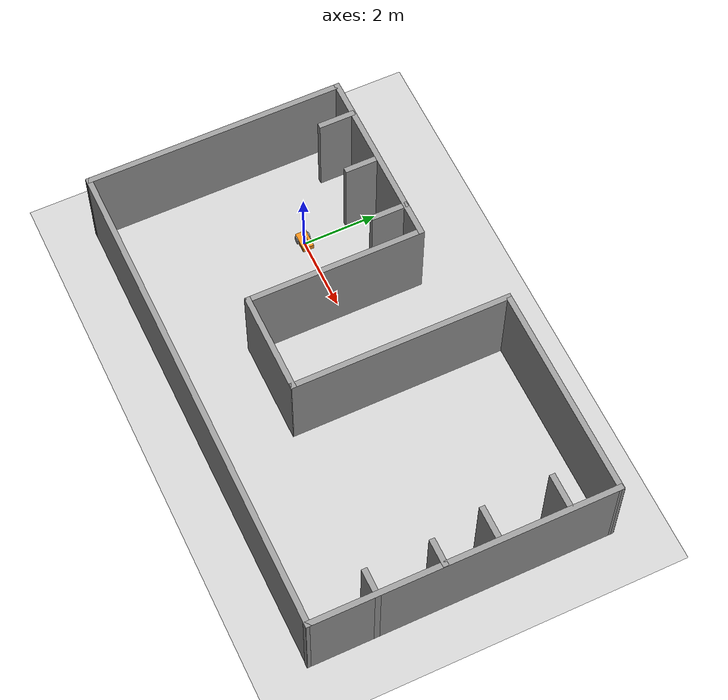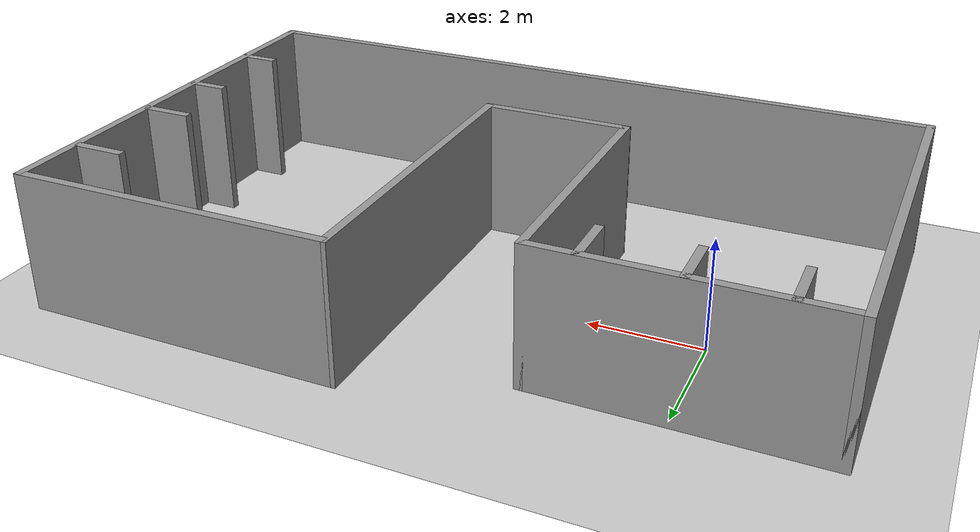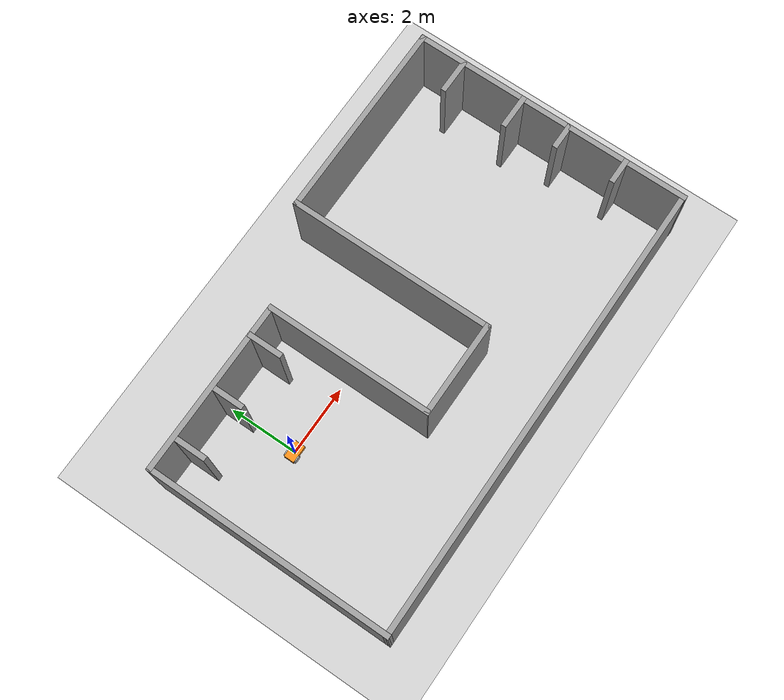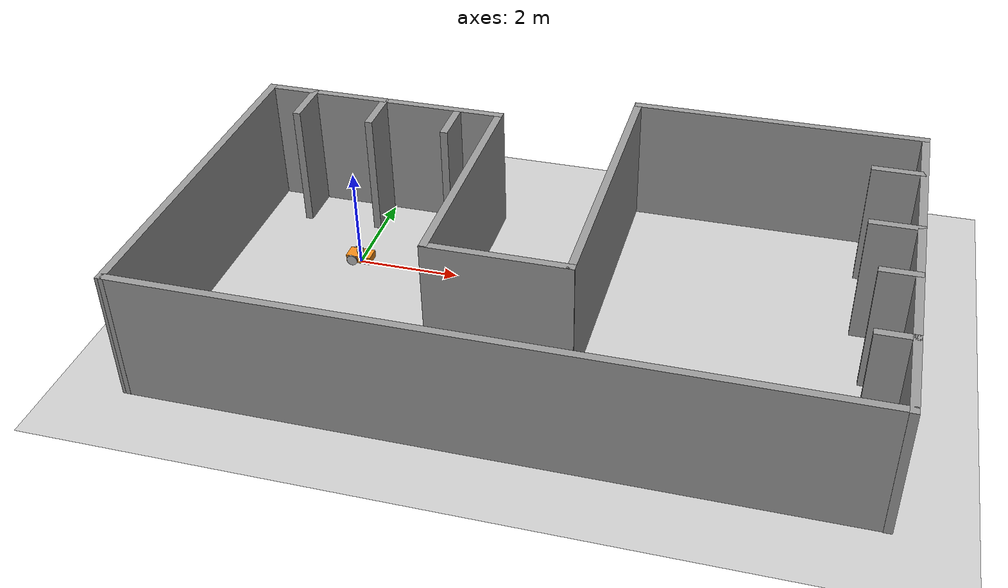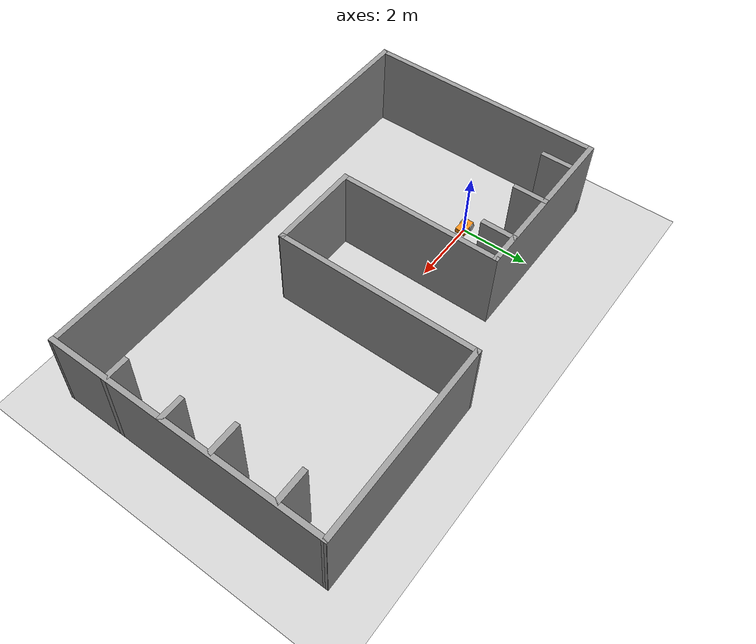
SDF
<sdf version="1.7">
 <world name="diff_drive_world">
  <model name="ground_plane">
   <static>1</static>
   <link name="link">
    <collision name="collision">
     <geometry><plane><normal>0 0 1</normal><size>100 100</size></plane></geometry>
     <surface><friction><ode><mu>100</mu><mu2>50</mu2></ode></friction></surface>
    </collision>
    <visual name="visual">
     <cast_shadows>0</cast_shadows>
     <geometry><plane><normal>0 0 1</normal><size>100 100</size></plane></geometry>
     <material>
      <script><uri>file://media/materials/scripts/gazebo.material</uri><name>Gazebo/Grey</name></script>
     </material>
    </visual>
   </link>
  </model>
  <light name="sun" type="directional">
   <pose>0 0 10 0 -0 0</pose>
   <diffuse>0.8 0.8 0.8 1</diffuse>
   <specular>0.2 0.2 0.2 1</specular>
   <attenuation>
    <range>1000</range>
    <constant>0.9</constant>
    <linear>0.01</linear>
    <quadratic>0.001</quadratic>
   </attenuation>
   <direction>-0.5 0.1 -0.9</direction>
   <spot><inner_angle>0</inner_angle><outer_angle>0</outer_angle><falloff>0</falloff></spot>
  </light>
  <model name="two_part_map">
   <pose>4 0 0 0 -0 0</pose>
   <link name="Wall_0">
    <collision name="Wall_0_Collision">
     <geometry><box><size>7 0.15 2.5</size></box></geometry>
     <pose>0 0 1.25 0 -0 0</pose>
    </collision>
    <visual name="Wall_0_Visual">
     <pose>0 0 1.25 0 -0 0</pose>
     <geometry><box><size>7 0.15 2.5</size></box></geometry>
     <material>
      <script><uri>file://media/materials/scripts/gazebo.material</uri><name>Gazebo/Grey</name></script>
      <ambient>1 1 1 1</ambient>
     </material>
     <meta><layer>0</layer></meta>
    </visual>
    <pose>-6.54004 -1.29247 0 0 -0 1.5708</pose>
   </link>
   <link name="Wall_1">
    <collision name="Wall_1_Collision">
     <geometry><box><size>5 0.15 2.5</size></box></geometry>
     <pose>0 0 1.25 0 -0 0</pose>
    </collision>
    <visual name="Wall_1_Visual">
     <pose>0 0 1.25 0 -0 0</pose>
     <geometry><box><size>5 0.15 2.5</size></box></geometry>
     <material>
      <script><uri>file://media/materials/scripts/gazebo.material</uri><name>Gazebo/Grey</name></script>
      <ambient>1 1 1 1</ambient>
     </material>
     <meta><layer>0</layer></meta>
    </visual>
    <pose>-4.11504 2.13253 0 0 -0 0</pose>
   </link>
   <link name="Wall_11">
    <collision name="Wall_11_Collision">
     <geometry><box><size>1 0.15 2.5</size></box></geometry>
     <pose>0 0 1.25 0 -0 0</pose>
    </collision>
    <visual name="Wall_11_Visual">
     <pose>0 0 1.25 0 -0 0</pose>
     <geometry><box><size>1 0.15 2.5</size></box></geometry>
     <material>
      <script><uri>file://media/materials/scripts/gazebo.material</uri><name>Gazebo/Grey</name></script>
      <ambient>1 1 1 1</ambient>
     </material>
     <meta><layer>0</layer></meta>
    </visual>
    <pose>-4.10004 1.69753 0 0 -0 -1.5708</pose>
   </link>
   <link name="Wall_13">
    <collision name="Wall_13_Collision">
     <geometry><box><size>1 0.15 2.5</size></box></geometry>
     <pose>0 0 1.25 0 -0 0</pose>
    </collision>
    <visual name="Wall_13_Visual">
     <pose>0 0 1.25 0 -0 0</pose>
     <geometry><box><size>1 0.15 2.5</size></box></geometry>
     <material>
      <script><uri>file://media/materials/scripts/gazebo.material</uri><name>Gazebo/Grey</name></script>
      <ambient>1 1 1 1</ambient>
     </material>
     <meta><layer>0</layer></meta>
    </visual>
    <pose>-2.54004 1.68753 0 0 -0 -1.5708</pose>
   </link>
   <link name="Wall_15">
    <collision name="Wall_15_Collision">
     <geometry><box><size>1 0.15 2.5</size></box></geometry>
     <pose>0 0 1.25 0 -0 0</pose>
    </collision>
    <visual name="Wall_15_Visual">
     <pose>0 0 1.25 0 -0 0</pose>
     <geometry><box><size>1 0.15 2.5</size></box></geometry>
     <material>
      <script><uri>file://media/materials/scripts/gazebo.material</uri><name>Gazebo/Grey</name></script>
      <ambient>1 1 1 1</ambient>
     </material>
     <meta><layer>0</layer></meta>
    </visual>
    <pose>6.07496 1.95253 0 0 -0 3.14159</pose>
   </link>
   <link name="Wall_17">
    <collision name="Wall_17_Collision">
     <geometry><box><size>1 0.15 2.5</size></box></geometry>
     <pose>0 0 1.25 0 -0 0</pose>
    </collision>
    <visual name="Wall_17_Visual">
     <pose>0 0 1.25 0 -0 0</pose>
     <geometry><box><size>1 0.15 2.5</size></box></geometry>
     <material>
      <script><uri>file://media/materials/scripts/gazebo.material</uri><name>Gazebo/Grey</name></script>
      <ambient>1 1 1 1</ambient>
     </material>
     <meta><layer>0</layer></meta>
    </visual>
    <pose>6.11496 0.112529 0 0 -0 3.14159</pose>
   </link>
   <link name="Wall_19">
    <collision name="Wall_19_Collision">
     <geometry><box><size>0.75 0.15 2.5</size></box></geometry>
     <pose>0 0 1.25 0 -0 0</pose>
    </collision>
    <visual name="Wall_19_Visual">
     <pose>0 0 1.25 0 -0 0</pose>
     <geometry><box><size>0.75 0.15 2.5</size></box></geometry>
     <material>
      <script><uri>file://media/materials/scripts/gazebo.material</uri><name>Gazebo/Grey</name></script>
      <ambient>1 1 1 1</ambient>
     </material>
     <meta><layer>0</layer></meta>
    </visual>
    <pose>6.22996 -1.28747 0 0 -0 3.14159</pose>
   </link>
   <link name="Wall_2">
    <collision name="Wall_2_Collision">
     <geometry><box><size>4.78 0.15 2.5</size></box></geometry>
     <pose>0 0 1.25 0 -0 0</pose>
    </collision>
    <visual name="Wall_2_Visual">
     <pose>0 0 1.25 0 -0 0</pose>
     <geometry><box><size>4.78 0.15 2.5</size></box></geometry>
     <material>
      <script><uri>file://media/materials/scripts/gazebo.material</uri><name>Gazebo/Grey</name></script>
      <ambient>1 1 1 1</ambient>
     </material>
     <meta><layer>0</layer></meta>
    </visual>
    <pose>-1.69004 -0.182471 0 0 -0 -1.5708</pose>
   </link>
   <link name="Wall_21">
    <collision name="Wall_21_Collision">
     <geometry><box><size>0.75 0.15 2.5</size></box></geometry>
     <pose>0 0 1.25 0 -0 0</pose>
    </collision>
    <visual name="Wall_21_Visual">
     <pose>0 0 1.25 0 -0 0</pose>
     <geometry><box><size>0.75 0.15 2.5</size></box></geometry>
     <material>
      <script><uri>file://media/materials/scripts/gazebo.material</uri><name>Gazebo/Grey</name></script>
      <ambient>1 1 1 1</ambient>
     </material>
     <meta><layer>0</layer></meta>
    </visual>
    <pose>6.23996 -2.99747 0 0 -0 3.14159</pose>
   </link>
   <link name="Wall_3">
    <collision name="Wall_3_Collision">
     <geometry><box><size>2.75 0.15 2.5</size></box></geometry>
     <pose>0 0 1.25 0 -0 0</pose>
    </collision>
    <visual name="Wall_3_Visual">
     <pose>0 0 1.25 0 -0 0</pose>
     <geometry><box><size>2.75 0.15 2.5</size></box></geometry>
     <material>
      <script><uri>file://media/materials/scripts/gazebo.material</uri><name>Gazebo/Grey</name></script>
      <ambient>1 1 1 1</ambient>
     </material>
     <meta><layer>0</layer></meta>
    </visual>
    <pose>-0.390038 -2.51747 0 0 -0 0</pose>
   </link>
   <link name="Wall_4">
    <collision name="Wall_4_Collision">
     <geometry><box><size>5.88 0.15 2.5</size></box></geometry>
     <pose>0 0 1.25 0 -0 0</pose>
    </collision>
    <visual name="Wall_4_Visual">
     <pose>0 0 1.25 0 -0 0</pose>
     <geometry><box><size>5.88 0.15 2.5</size></box></geometry>
     <material>
      <script><uri>file://media/materials/scripts/gazebo.material</uri><name>Gazebo/Grey</name></script>
      <ambient>1 1 1 1</ambient>
     </material>
     <meta><layer>0</layer></meta>
    </visual>
    <pose>0.909962 0.367528 0 0 -0 1.5708</pose>
   </link>
   <link name="Wall_5">
    <collision name="Wall_5_Collision">
     <geometry><box><size>5.77001 0.15 2.5</size></box></geometry>
     <pose>0 0 1.25 0 -0 0</pose>
    </collision>
    <visual name="Wall_5_Visual">
     <pose>0 0 1.25 0 -0 0</pose>
     <geometry><box><size>5.77001 0.15 2.5</size></box></geometry>
     <material>
      <script><uri>file://media/materials/scripts/gazebo.material</uri><name>Gazebo/Grey</name></script>
      <ambient>1 1 1 1</ambient>
     </material>
     <meta><layer>0</layer></meta>
    </visual>
    <pose>3.72996 3.23753 0 0 -0 0.001779</pose>
   </link>
   <link name="Wall_6">
    <collision name="Wall_6_Collision">
     <geometry><box><size>8.1 0.15 2.5</size></box></geometry>
     <pose>0 0 1.25 0 -0 0</pose>
    </collision>
    <visual name="Wall_6_Visual">
     <pose>0 0 1.25 0 -0 0</pose>
     <geometry><box><size>8.1 0.15 2.5</size></box></geometry>
     <material>
      <script><uri>file://media/materials/scripts/gazebo.material</uri><name>Gazebo/Grey</name></script>
      <ambient>1 1 1 1</ambient>
     </material>
     <meta><layer>0</layer></meta>
    </visual>
    <pose>6.53996 -0.742471 0 0 -0 -1.5708</pose>
   </link>
   <link name="Wall_7">
    <collision name="Wall_7_Collision">
     <geometry><box><size>13.23 0.15 2.5</size></box></geometry>
     <pose>0 0 1.25 0 -0 0</pose>
    </collision>
    <visual name="Wall_7_Visual">
     <pose>0 0 1.25 0 -0 0</pose>
     <geometry><box><size>13.23 0.15 2.5</size></box></geometry>
     <material>
      <script><uri>file://media/materials/scripts/gazebo.material</uri><name>Gazebo/Grey</name></script>
      <ambient>1 1 1 1</ambient>
     </material>
     <meta><layer>0</layer></meta>
    </visual>
    <pose>-3.8e-05 -4.71247 0 0 -0 -3.14083</pose>
   </link>
   <link name="Wall_9">
    <collision name="Wall_9_Collision">
     <geometry><box><size>1 0.15 2.5</size></box></geometry>
     <pose>0 0 1.25 0 -0 0</pose>
    </collision>
    <visual name="Wall_9_Visual">
     <pose>0 0 1.25 0 -0 0</pose>
     <geometry><box><size>1 0.15 2.5</size></box></geometry>
     <material>
      <script><uri>file://media/materials/scripts/gazebo.material</uri><name>Gazebo/Grey</name></script>
      <ambient>1 1 1 1</ambient>
     </material>
     <meta><layer>0</layer></meta>
    </visual>
    <pose>-5.61004 1.67753 0 0 -0 -1.5708</pose>
   </link>
   <static>1</static>
  </model>
  <physics name="ode_70iters" type="ode">
   <real_time_update_rate>1500</real_time_update_rate>
   <ode>
    <solver>
     <type>quick</type>
     <iters>70</iters>
     <sor>1.3</sor>
     <use_dynamic_moi_rescaling>0</use_dynamic_moi_rescaling>
    </solver>
    <constraints>
     <cfm>0</cfm>
     <erp>0.2</erp>
     <contact_max_correcting_vel>100</contact_max_correcting_vel>
     <contact_surface_layer>0.001</contact_surface_layer>
    </constraints>
   </ode>
   <max_step_size>0.001</max_step_size>
   <real_time_factor>1</real_time_factor>
  </physics>
  <gravity>0 0 -9.8</gravity>
  <magnetic_field>6e-06 2.3e-05 -4.2e-05</magnetic_field>
  <atmosphere type="adiabatic"/>
  <scene><ambient>0.4 0.4 0.4 1</ambient><background>0.7 0.7 0.7 1</background><shadows>1</shadows></scene>
  <spherical_coordinates>
   <surface_model>EARTH_WGS84</surface_model>
   <latitude_deg>0</latitude_deg>
   <longitude_deg>0</longitude_deg>
   <elevation>0</elevation>
   <heading_deg>0</heading_deg>
  </spherical_coordinates>
  <model name="diff_drive">
   <link name="base_link">
    <inertial>
     <mass>20</mass>
     <inertia>
      <ixx>0.187501</ixx>
      <ixy>0</ixy>
      <ixz>0</ixz>
      <iyy>0.454168</iyy>
      <iyz>0</iyz>
      <izz>0.454168</izz>
     </inertia>
    </inertial>
    <collision name="base_link_fixed_joint_lump__collision_collision">
     <geometry><box><size>0.5 0.3 0.15</size></box></geometry>
    </collision>
    <collision name="base_link_fixed_joint_lump__caster_collision_collision_1">
     <pose>0.19625 0 -0.075 0 -0 0</pose>
     <geometry><sphere><radius>0.05375</radius></sphere></geometry>
    </collision>
    <collision name="base_link_fixed_joint_lump__laser_link_collision_2">
     <pose>0 0 0.125 0 -0 0</pose>
     <geometry><box><size>0.1 0.1 0.1</size></box></geometry>
    </collision>
    <visual name="base_link_visual_visual">
     <geometry><box><size>0.5 0.3 0.15</size></box></geometry>
     <material>
      <script><name>Gazebo/Orange</name><uri>file://media/materials/scripts/gazebo.material</uri></script>
     </material>
    </visual>
    <visual name="base_link_fixed_joint_lump__caster_visual_visual_1">
     <pose>0.19625 0 -0.075 0 -0 0</pose>
     <geometry><sphere><radius>0.05375</radius></sphere></geometry>
    </visual>
    <visual name="base_link_fixed_joint_lump__laser_link_visual_2">
     <pose>0 0 0.125 0 -0 0</pose>
     <geometry><box><size>0.1 0.1 0.1</size></box></geometry>
    </visual>
    <sensor name="head_hokuyo_sensor" type="ray">
     <visualize>0</visualize>
     <update_rate>20</update_rate>
     <ray>
      <scan>
       <horizontal>
        <samples>720</samples>
        <resolution>1</resolution>
        <min_angle>-3.14159</min_angle>
        <max_angle>3.14159</max_angle>
       </horizontal>
       <vertical><samples>1</samples><min_angle>0</min_angle><max_angle>0</max_angle></vertical>
      </scan>
      <range><min>0.1</min><max>20</max><resolution>0.01</resolution></range>
      <noise><type>gaussian</type><mean>0</mean><stddev>0.01</stddev></noise>
     </ray>
     <plugin name="gazebo_ros_head_hokuyo_controller" filename="libgazebo_ros_laser.so">
      <topicName>/scan</topicName>
      <frameName>/laser_link</frameName>
      <robotNamespace>/</robotNamespace>
     </plugin>
     <pose>0 0 0.125 0 -0 0</pose>
    </sensor>
   </link>
   <joint name="left_wheel_hinge" type="revolute">
    <pose relative_to="base_link">-0.125 0.165 -0.02125 0 -0 0</pose>
    <parent>base_link</parent>
    <child>left_wheel</child>
    <axis>
     <xyz>0 1 0</xyz>
     <limit><lower>-1e+16</lower><upper>1e+16</upper></limit>
     <dynamics><spring_reference>0</spring_reference><spring_stiffness>0</spring_stiffness></dynamics>
    </axis>
   </joint>
   <link name="left_wheel">
    <pose relative_to="left_wheel_hinge">0 0 0 0 -0 0</pose>
    <inertial>
     <pose>0 0 0 -0 1.5707 1.5707</pose>
     <mass>3</mass>
     <inertia>
      <ixx>0.00889219</ixx>
      <ixy>0</ixy>
      <ixz>0</ixz>
      <iyy>0.00889219</iyy>
      <iyz>0</iyz>
      <izz>0.0173344</izz>
     </inertia>
    </inertial>
    <collision name="left_wheel_fixed_joint_lump__collision_collision">
     <pose>0 0 0 1.57089 1.57079 -3.14159</pose>
     <geometry><cylinder><length>0.03</length><radius>0.1075</radius></cylinder></geometry>
    </collision>
    <visual name="left_wheel_visual_visual">
     <pose>0 0 0 1.57089 1.57079 -3.14159</pose>
     <geometry><cylinder><length>0.03</length><radius>0.1075</radius></cylinder></geometry>
    </visual>
   </link>
   <joint name="right_wheel_hinge" type="revolute">
    <pose relative_to="base_link">-0.125 -0.165 -0.02125 0 -0 0</pose>
    <parent>base_link</parent>
    <child>right_wheel</child>
    <axis>
     <xyz>0 1 0</xyz>
     <limit><lower>-1e+16</lower><upper>1e+16</upper></limit>
     <dynamics><spring_reference>0</spring_reference><spring_stiffness>0</spring_stiffness></dynamics>
    </axis>
   </joint>
   <link name="right_wheel">
    <pose relative_to="right_wheel_hinge">0 0 0 0 -0 0</pose>
    <inertial>
     <pose>0 0 0 -0 1.5707 1.5707</pose>
     <mass>3</mass>
     <inertia>
      <ixx>0.00889219</ixx>
      <ixy>0</ixy>
      <ixz>0</ixz>
      <iyy>0.00889219</iyy>
      <iyz>0</iyz>
      <izz>0.0173344</izz>
     </inertia>
    </inertial>
    <collision name="right_wheel_fixed_joint_lump__collision_collision">
     <pose>0 0 0 1.57089 1.57079 -3.14159</pose>
     <geometry><cylinder><length>0.03</length><radius>0.1075</radius></cylinder></geometry>
    </collision>
    <visual name="right_wheel_visual_visual">
     <pose>0 0 0 1.57089 1.57079 -3.14159</pose>
     <geometry><cylinder><length>0.03</length><radius>0.1075</radius></cylinder></geometry>
    </visual>
   </link>
   <static>0</static>
   <plugin name="differential_drive_controller" filename="libgazebo_ros_diff_drive.so">
    <alwaysOn>1</alwaysOn>
    <updateRate>20</updateRate>
    <leftJoint>left_wheel_hinge</leftJoint>
    <rightJoint>right_wheel_hinge</rightJoint>
    <wheelSeparation>0.3576</wheelSeparation>
    <wheelDiameter>0.215</wheelDiameter>
    <wheelTorque>10</wheelTorque>
    <commandTopic>cmd_vel</commandTopic>
    <odometryTopic>odom</odometryTopic>
    <odometryFrame>odom_link</odometryFrame>
    <robotBaseFrame>base_link</robotBaseFrame>
    <legacyMode>0</legacyMode>
    <publishOdomTF>0</publishOdomTF>
    <robotNamespace>/</robotNamespace>
   </plugin>
   <pose>-9.2e-05 0.000362 0.12875 0 0 -0.002746</pose>
  </model>
 </world>
</sdf>
